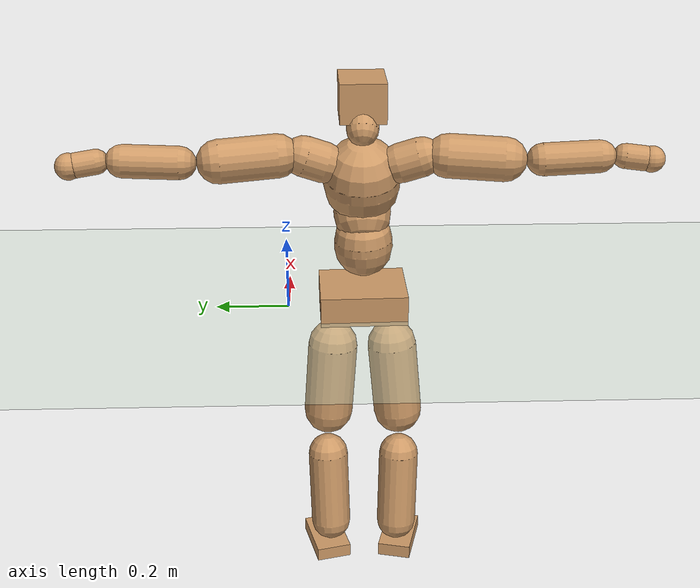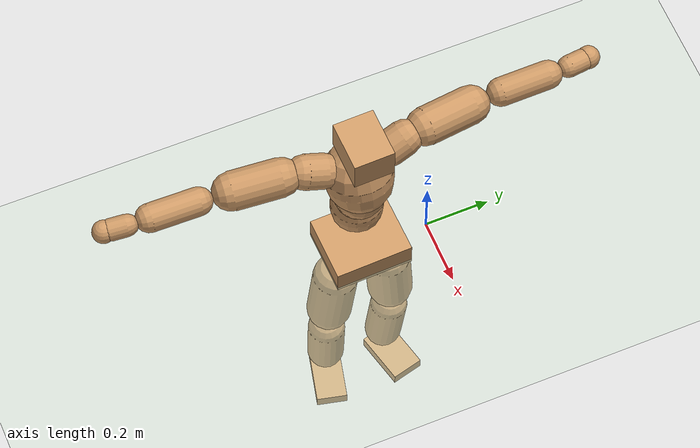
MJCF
<mujoco model="humanoid">
  <compiler coordinate="local" angle="radian"/>
  <default>
    <joint damping="0.0" armature="0.01" stiffness="0.0" limited="true"/>
    <geom conaffinity="1" condim="3" contype="7" margin="0.001" rgba="0.8 0.6 .4 1"/>
  </default>
  <asset>
    <texture type="skybox" builtin="gradient" rgb1=".4 .5 .6" rgb2="0 0 0" width="100" height="100"/>
    <texture builtin="flat" height="1278" mark="cross" markrgb="1 1 1" name="texgeom" random="0.01" rgb1="0.8 0.6 0.4" rgb2="0.8 0.6 0.4" type="cube" width="127"/>
    <texture builtin="checker" height="100" name="texplane" rgb1="0 0 0" rgb2="0.8 0.8 0.8" type="2d" width="100"/>
    <material name="MatPlane" reflectance="0.5" shininess="1" specular="1" texrepeat="60 60" texture="texplane"/>
    <material name="geom" texture="texgeom" texuniform="true"/>
  </asset>
  <worldbody>
    <light cutoff="100" diffuse="1 1 1" dir="-0 0 -1.3" directional="true" exponent="1" pos="0 0 1.3" specular=".1 .1 .1"/>
    <geom conaffinity="1" condim="3" name="floor" pos="0 0 0" rgba="0.8 0.9 0.8 1" size="100 100 .2" type="plane" material="MatPlane"/>
    <body name="Pelvis" pos="-0.0016 -0.2061 0.0404">
      <freejoint name="Pelvis"/>
      <geom type="box" contype="1" conaffinity="1" density="500" pos="-0.0051 -0.0001 -0.0125" size="0.1004 0.1188 0.0414" quat="0.9999 0.0000 0.0000 0.0135" name="Pelvis"/>
      <body name="L_Hip" pos="0.0003 0.079 -0.0897">
        <joint name="L_Hip_x" type="hinge" pos="0 0 0" axis="1 0 0" stiffness="800" damping="80" armature="0.02" range="-180.0000 180.0000"/>
        <joint name="L_Hip_y" type="hinge" pos="0 0 0" axis="0 1 0" stiffness="800" damping="80" armature="0.02" range="-180.0000 180.0000"/>
        <joint name="L_Hip_z" type="hinge" pos="0 0 0" axis="0 0 1" stiffness="800" damping="80" armature="0.02" range="-180.0000 180.0000"/>
        <geom type="capsule" contype="1" conaffinity="1" density="500" fromto="-0.0026 0.0051 -0.0697 -0.0104 0.0203 -0.2788" size="0.0692" name="L_Hip"/>
        <body name="L_Knee" pos="-0.0131 0.0253 -0.3485">
          <joint name="L_Knee_x" type="hinge" pos="0 0 0" axis="1 0 0" stiffness="800" damping="80" armature="0.02" range="-180.0000 180.0000"/>
          <joint name="L_Knee_y" type="hinge" pos="0 0 0" axis="0 1 0" stiffness="800" damping="80" armature="0.02" range="-180.0000 180.0000"/>
          <joint name="L_Knee_z" type="hinge" pos="0 0 0" axis="0 0 1" stiffness="800" damping="80" armature="0.02" range="-180.0000 180.0000"/>
          <geom type="capsule" contype="1" conaffinity="1" density="500" fromto="-0.0094 -0.0019 -0.0734 -0.0375 -0.0077 -0.2938" size="0.0573" name="L_Knee"/>
          <body name="L_Ankle" pos="-0.0469 -0.0096 -0.3672">
            <joint name="L_Ankle_x" type="hinge" pos="0 0 0" axis="1 0 0" stiffness="800" damping="80" armature="0.02" range="-180.0000 180.0000"/>
            <joint name="L_Ankle_y" type="hinge" pos="0 0 0" axis="0 1 0" stiffness="800" damping="80" armature="0.02" range="-180.0000 180.0000"/>
            <joint name="L_Ankle_z" type="hinge" pos="0 0 0" axis="0 0 1" stiffness="800" damping="80" armature="0.02" range="-180.0000 180.0000"/>
            <geom type="box" contype="1" conaffinity="1" density="500" pos="0.0563 0.0141 -0.0268" size="0.0836 0.0504 0.0194" quat="0.9925 0.0000 0.0000 0.1224" name="L_Ankle"/>
            <body name="L_Toe" pos="0.1126 0.0282 -0.0537">
              <joint name="L_Toe_x" type="hinge" pos="0 0 0" axis="1 0 0" stiffness="500" damping="50" armature="0.02" range="-180.0000 180.0000"/>
              <joint name="L_Toe_y" type="hinge" pos="0 0 0" axis="0 1 0" stiffness="500" damping="50" armature="0.02" range="-180.0000 180.0000"/>
              <joint name="L_Toe_z" type="hinge" pos="0 0 0" axis="0 0 1" stiffness="500" damping="50" armature="0.02" range="-180.0000 180.0000"/>
              <geom type="box" contype="1" conaffinity="1" density="500" pos="0.0000 0.0000 0.0267" size="0.001 0.0025 0.001" quat="0.9917 0.0000 0.0000 0.1285" name="L_Toe"/>
            </body>
          </body>
        </body>
      </body>
      <body name="R_Hip" pos="0.0021 -0.0772 -0.0897">
        <joint name="R_Hip_x" type="hinge" pos="0 0 0" axis="1 0 0" stiffness="800" damping="80" armature="0.02" range="-180.0000 180.0000"/>
        <joint name="R_Hip_y" type="hinge" pos="0 0 0" axis="0 1 0" stiffness="800" damping="80" armature="0.02" range="-180.0000 180.0000"/>
        <joint name="R_Hip_z" type="hinge" pos="0 0 0" axis="0 0 1" stiffness="800" damping="80" armature="0.02" range="-180.0000 180.0000"/>
        <geom type="capsule" contype="1" conaffinity="1" density="500" fromto="-0.0031 -0.0062 -0.0705 -0.0123 -0.0248 -0.2819" size="0.0685" name="R_Hip"/>
        <body name="R_Knee" pos="-0.0153 -0.031 -0.3524">
          <joint name="R_Knee_x" type="hinge" pos="0 0 0" axis="1 0 0" stiffness="800" damping="80" armature="0.02" range="-180.0000 180.0000"/>
          <joint name="R_Knee_y" type="hinge" pos="0 0 0" axis="0 1 0" stiffness="800" damping="80" armature="0.02" range="-180.0000 180.0000"/>
          <joint name="R_Knee_z" type="hinge" pos="0 0 0" axis="0 0 1" stiffness="800" damping="80" armature="0.02" range="-180.0000 180.0000"/>
          <geom type="capsule" contype="1" conaffinity="1" density="500" fromto="-0.0093 0.0021 -0.0734 -0.0372 0.0084 -0.2937" size="0.0571" name="R_Knee"/>
          <body name="R_Ankle" pos="-0.0465 0.0105 -0.3672">
            <joint name="R_Ankle_x" type="hinge" pos="0 0 0" axis="1 0 0" stiffness="800" damping="80" armature="0.02" range="-180.0000 180.0000"/>
            <joint name="R_Ankle_y" type="hinge" pos="0 0 0" axis="0 1 0" stiffness="800" damping="80" armature="0.02" range="-180.0000 180.0000"/>
            <joint name="R_Ankle_z" type="hinge" pos="0 0 0" axis="0 0 1" stiffness="800" damping="80" armature="0.02" range="-180.0000 180.0000"/>
            <geom type="box" contype="1" conaffinity="1" density="500" pos="0.0582 -0.0139 -0.0227" size="0.083 0.0477 0.0199" quat="0.9931 0.0000 0.0000 -0.1168" name="R_Ankle"/>
            <body name="R_Toe" pos="0.1163 -0.0278 -0.0454">
              <joint name="R_Toe_x" type="hinge" pos="0 0 0" axis="1 0 0" stiffness="500" damping="50" armature="0.02" range="-180.0000 180.0000"/>
              <joint name="R_Toe_y" type="hinge" pos="0 0 0" axis="0 1 0" stiffness="500" damping="50" armature="0.02" range="-180.0000 180.0000"/>
              <joint name="R_Toe_z" type="hinge" pos="0 0 0" axis="0 0 1" stiffness="500" damping="50" armature="0.02" range="-180.0000 180.0000"/>
              <geom type="box" contype="1" conaffinity="1" density="500" pos="0.0000 0.0000 0.0246" size="0.0009 0.0024 0.0011" quat="0.9943 0.0000 0.0000 -0.1070" name="R_Toe"/>
            </body>
          </body>
        </body>
      </body>
      <body name="Torso" pos="-0.0332 -0.0027 0.1046">
        <joint name="Torso_x" type="hinge" pos="0 0 0" axis="1 0 0" stiffness="1000" damping="100" armature="0.02" range="-180.0000 180.0000"/>
        <joint name="Torso_y" type="hinge" pos="0 0 0" axis="0 1 0" stiffness="1000" damping="100" armature="0.02" range="-180.0000 180.0000"/>
        <joint name="Torso_z" type="hinge" pos="0 0 0" axis="0 0 1" stiffness="1000" damping="100" armature="0.02" range="-180.0000 180.0000"/>
        <geom type="capsule" contype="1" conaffinity="1" density="500" fromto="-0.0048 0.0020 0.0706 -0.0032 0.0014 0.0470" size="0.0783" name="Torso"/>
        <body name="Spine" pos="-0.0079 0.0034 0.1176">
          <joint name="Spine_x" type="hinge" pos="0 0 0" axis="1 0 0" stiffness="1000" damping="100" armature="0.02" range="-180.0000 180.0000"/>
          <joint name="Spine_y" type="hinge" pos="0 0 0" axis="0 1 0" stiffness="1000" damping="100" armature="0.02" range="-180.0000 180.0000"/>
          <joint name="Spine_z" type="hinge" pos="0 0 0" axis="0 0 1" stiffness="1000" damping="100" armature="0.02" range="-180.0000 180.0000"/>
          <geom type="capsule" contype="1" conaffinity="1" density="500" fromto="0.0195 0.0014 0.0281 0.0130 0.0009 0.0187" size="0.077" name="Spine"/>
          <body name="Chest" pos="0.0326 0.0023 0.0468">
            <joint name="Chest_x" type="hinge" pos="0 0 0" axis="1 0 0" stiffness="1000" damping="100" armature="0.02" range="-180.0000 180.0000"/>
            <joint name="Chest_y" type="hinge" pos="0 0 0" axis="0 1 0" stiffness="1000" damping="100" armature="0.02" range="-180.0000 180.0000"/>
            <joint name="Chest_z" type="hinge" pos="0 0 0" axis="0 0 1" stiffness="1000" damping="100" armature="0.02" range="-180.0000 180.0000"/>
            <geom type="capsule" contype="1" conaffinity="1" density="500" fromto="-0.0261 -0.0004 0.0872 -0.0174 -0.0003 0.0581" size="0.1013" name="Chest"/>
            <body name="Neck" pos="-0.0517 -0.0014 0.2013">
              <joint name="Neck_x" type="hinge" pos="0 0 0" axis="1 0 0" stiffness="500" damping="50" armature="0.02" range="-180.0000 180.0000"/>
              <joint name="Neck_y" type="hinge" pos="0 0 0" axis="0 1 0" stiffness="500" damping="50" armature="0.02" range="-180.0000 180.0000"/>
              <joint name="Neck_z" type="hinge" pos="0 0 0" axis="0 0 1" stiffness="500" damping="50" armature="0.02" range="-180.0000 180.0000"/>
              <geom type="capsule" contype="1" conaffinity="1" density="500" fromto="0.0090 -0.0002 0.0106 0.0360 -0.0009 0.0424" size="0.0423" name="Neck"/>
              <body name="Head" pos="0.0451 -0.0011 0.053">
                <joint name="Head_x" type="hinge" pos="0 0 0" axis="1 0 0" stiffness="500" damping="50" armature="0.02" range="-180.0000 180.0000"/>
                <joint name="Head_y" type="hinge" pos="0 0 0" axis="0 1 0" stiffness="500" damping="50" armature="0.02" range="-180.0000 180.0000"/>
                <joint name="Head_z" type="hinge" pos="0 0 0" axis="0 0 1" stiffness="500" damping="50" armature="0.02" range="-180.0000 180.0000"/>
                <geom type="box" contype="1" conaffinity="1" density="500" pos="0.0235 0.0005 0.0275" size="0.0758 0.061 0.0524" quat="1.0000 0.0000 0.0000 0.0098" name="Head"/>
              </body>
            </body>
            <body name="L_Thorax" pos="-0.037 0.0794 0.118">
              <joint name="L_Thorax_x" type="hinge" pos="0 0 0" axis="1 0 0" stiffness="500" damping="50" armature="0.02" range="-180.0000 180.0000"/>
              <joint name="L_Thorax_y" type="hinge" pos="0 0 0" axis="0 1 0" stiffness="500" damping="50" armature="0.02" range="-180.0000 180.0000"/>
              <joint name="L_Thorax_z" type="hinge" pos="0 0 0" axis="0 0 1" stiffness="500" damping="50" armature="0.02" range="-180.0000 180.0000"/>
              <geom type="capsule" contype="1" conaffinity="1" density="500" fromto="-0.0023 0.0179 0.0067 -0.0092 0.0715 0.0270" size="0.0534" name="L_Thorax"/>
              <body name="L_Shoulder" pos="-0.0115 0.0893 0.0337">
                <joint name="L_Shoulder_x" type="hinge" pos="0 0 0" axis="1 0 0" stiffness="500" damping="50" armature="0.02" range="-720.0000 720.0000"/>
                <joint name="L_Shoulder_y" type="hinge" pos="0 0 0" axis="0 1 0" stiffness="500" damping="50" armature="0.02" range="-720.0000 720.0000"/>
                <joint name="L_Shoulder_z" type="hinge" pos="0 0 0" axis="0 0 1" stiffness="500" damping="50" armature="0.02" range="-720.0000 720.0000"/>
                <geom type="capsule" contype="1" conaffinity="1" density="500" fromto="-0.0067 0.0496 -0.0024 -0.0268 0.1983 -0.0095" size="0.0575" name="L_Shoulder"/>
                <body name="L_Elbow" pos="-0.0334 0.2479 -0.0119">
                  <joint name="L_Elbow_x" type="hinge" pos="0 0 0" axis="1 0 0" stiffness="500" damping="50" armature="0.02" range="-720.0000 720.0000"/>
                  <joint name="L_Elbow_y" type="hinge" pos="0 0 0" axis="0 1 0" stiffness="500" damping="50" armature="0.02" range="-720.0000 720.0000"/>
                  <joint name="L_Elbow_z" type="hinge" pos="0 0 0" axis="0 0 1" stiffness="500" damping="50" armature="0.02" range="-720.0000 720.0000"/>
                  <geom type="capsule" contype="1" conaffinity="1" density="500" fromto="0.0005 0.0485 0.0020 0.0022 0.1942 0.0078" size="0.043" name="L_Elbow"/>
                  <body name="L_Wrist" pos="0.0027 0.2427 0.0098">
                    <joint name="L_Wrist_x" type="hinge" pos="0 0 0" axis="1 0 0" stiffness="300" damping="30" armature="0.02" range="-180.0000 180.0000"/>
                    <joint name="L_Wrist_y" type="hinge" pos="0 0 0" axis="0 1 0" stiffness="300" damping="30" armature="0.02" range="-180.0000 180.0000"/>
                    <joint name="L_Wrist_z" type="hinge" pos="0 0 0" axis="0 0 1" stiffness="300" damping="30" armature="0.02" range="-180.0000 180.0000"/>
                    <geom type="capsule" contype="1" conaffinity="1" density="500" fromto="-0.0028 0.0171 -0.0021 -0.0112 0.0685 -0.0083" size="0.0326" name="L_Wrist"/>
                    <body name="L_Hand" pos="-0.014 0.0857 -0.0104">
                      <joint name="L_Hand_x" type="hinge" pos="0 0 0" axis="1 0 0" stiffness="300" damping="30" armature="0.02" range="-180.0000 180.0000"/>
                      <joint name="L_Hand_y" type="hinge" pos="0 0 0" axis="0 1 0" stiffness="300" damping="30" armature="0.02" range="-180.0000 180.0000"/>
                      <joint name="L_Hand_z" type="hinge" pos="0 0 0" axis="0 0 1" stiffness="300" damping="30" armature="0.02" range="-180.0000 180.0000"/>
                      <geom type="sphere" contype="1" conaffinity="1" density="500" size="0.0346" pos="0.0000 0.0000 0.0000" name="L_Hand"/>
                    </body>
                  </body>
                </body>
              </body>
            </body>
            <body name="R_Thorax" pos="-0.0417 -0.0801 0.1164">
              <joint name="R_Thorax_x" type="hinge" pos="0 0 0" axis="1 0 0" stiffness="500" damping="50" armature="0.02" range="-180.0000 180.0000"/>
              <joint name="R_Thorax_y" type="hinge" pos="0 0 0" axis="0 1 0" stiffness="500" damping="50" armature="0.02" range="-180.0000 180.0000"/>
              <joint name="R_Thorax_z" type="hinge" pos="0 0 0" axis="0 0 1" stiffness="500" damping="50" armature="0.02" range="-180.0000 180.0000"/>
              <geom type="capsule" contype="1" conaffinity="1" density="500" fromto="-0.0024 -0.0186 0.0063 -0.0097 -0.0744 0.0253" size="0.0522" name="R_Thorax"/>
              <body name="R_Shoulder" pos="-0.0122 -0.093 0.0317">
                <joint name="R_Shoulder_x" type="hinge" pos="0 0 0" axis="1 0 0" stiffness="500" damping="50" armature="0.02" range="-720.0000 720.0000"/>
                <joint name="R_Shoulder_y" type="hinge" pos="0 0 0" axis="0 1 0" stiffness="500" damping="50" armature="0.02" range="-720.0000 720.0000"/>
                <joint name="R_Shoulder_z" type="hinge" pos="0 0 0" axis="0 0 1" stiffness="500" damping="50" armature="0.02" range="-720.0000 720.0000"/>
                <geom type="capsule" contype="1" conaffinity="1" density="500" fromto="-0.0050 -0.0485 -0.0020 -0.0201 -0.1938 -0.0080" size="0.0579" name="R_Shoulder"/>
                <body name="R_Elbow" pos="-0.0251 -0.2423 -0.01">
                  <joint name="R_Elbow_x" type="hinge" pos="0 0 0" axis="1 0 0" stiffness="500" damping="50" armature="0.02" range="-720.0000 720.0000"/>
                  <joint name="R_Elbow_y" type="hinge" pos="0 0 0" axis="0 1 0" stiffness="500" damping="50" armature="0.02" range="-720.0000 720.0000"/>
                  <joint name="R_Elbow_z" type="hinge" pos="0 0 0" axis="0 0 1" stiffness="500" damping="50" armature="0.02" range="-720.0000 720.0000"/>
                  <geom type="capsule" contype="1" conaffinity="1" density="500" fromto="0.0003 -0.0488 0.0022 0.0012 -0.1952 0.0089" size="0.0426" name="R_Elbow"/>
                  <body name="R_Wrist" pos="0.0015 -0.244 0.0112">
                    <joint name="R_Wrist_x" type="hinge" pos="0 0 0" axis="1 0 0" stiffness="300" damping="30" armature="0.02" range="-180.0000 180.0000"/>
                    <joint name="R_Wrist_y" type="hinge" pos="0 0 0" axis="0 1 0" stiffness="300" damping="30" armature="0.02" range="-180.0000 180.0000"/>
                    <joint name="R_Wrist_z" type="hinge" pos="0 0 0" axis="0 0 1" stiffness="300" damping="30" armature="0.02" range="-180.0000 180.0000"/>
                    <geom type="capsule" contype="1" conaffinity="1" density="500" fromto="-0.0022 -0.0169 -0.0015 -0.0089 -0.0675 -0.0061" size="0.0327" name="R_Wrist"/>
                    <body name="R_Hand" pos="-0.0112 -0.0844 -0.0076">
                      <joint name="R_Hand_x" type="hinge" pos="0 0 0" axis="1 0 0" stiffness="300" damping="30" armature="0.02" range="-180.0000 180.0000"/>
                      <joint name="R_Hand_y" type="hinge" pos="0 0 0" axis="0 1 0" stiffness="300" damping="30" armature="0.02" range="-180.0000 180.0000"/>
                      <joint name="R_Hand_z" type="hinge" pos="0 0 0" axis="0 0 1" stiffness="300" damping="30" armature="0.02" range="-180.0000 180.0000"/>
                      <geom type="sphere" contype="1" conaffinity="1" density="500" size="0.0341" pos="0.0000 0.0000 0.0000" name="R_Hand"/>
                    </body>
                  </body>
                </body>
              </body>
            </body>
          </body>
        </body>
      </body>
    </body>
  </worldbody>
  <actuator>
    <motor name="L_Hip_x" joint="L_Hip_x" gear="500"/>
    <motor name="L_Hip_y" joint="L_Hip_y" gear="500"/>
    <motor name="L_Hip_z" joint="L_Hip_z" gear="500"/>
    <motor name="L_Knee_x" joint="L_Knee_x" gear="500"/>
    <motor name="L_Knee_y" joint="L_Knee_y" gear="500"/>
    <motor name="L_Knee_z" joint="L_Knee_z" gear="500"/>
    <motor name="L_Ankle_x" joint="L_Ankle_x" gear="500"/>
    <motor name="L_Ankle_y" joint="L_Ankle_y" gear="500"/>
    <motor name="L_Ankle_z" joint="L_Ankle_z" gear="500"/>
    <motor name="L_Toe_x" joint="L_Toe_x" gear="500"/>
    <motor name="L_Toe_y" joint="L_Toe_y" gear="500"/>
    <motor name="L_Toe_z" joint="L_Toe_z" gear="500"/>
    <motor name="R_Hip_x" joint="R_Hip_x" gear="500"/>
    <motor name="R_Hip_y" joint="R_Hip_y" gear="500"/>
    <motor name="R_Hip_z" joint="R_Hip_z" gear="500"/>
    <motor name="R_Knee_x" joint="R_Knee_x" gear="500"/>
    <motor name="R_Knee_y" joint="R_Knee_y" gear="500"/>
    <motor name="R_Knee_z" joint="R_Knee_z" gear="500"/>
    <motor name="R_Ankle_x" joint="R_Ankle_x" gear="500"/>
    <motor name="R_Ankle_y" joint="R_Ankle_y" gear="500"/>
    <motor name="R_Ankle_z" joint="R_Ankle_z" gear="500"/>
    <motor name="R_Toe_x" joint="R_Toe_x" gear="500"/>
    <motor name="R_Toe_y" joint="R_Toe_y" gear="500"/>
    <motor name="R_Toe_z" joint="R_Toe_z" gear="500"/>
    <motor name="Torso_x" joint="Torso_x" gear="500"/>
    <motor name="Torso_y" joint="Torso_y" gear="500"/>
    <motor name="Torso_z" joint="Torso_z" gear="500"/>
    <motor name="Spine_x" joint="Spine_x" gear="500"/>
    <motor name="Spine_y" joint="Spine_y" gear="500"/>
    <motor name="Spine_z" joint="Spine_z" gear="500"/>
    <motor name="Chest_x" joint="Chest_x" gear="500"/>
    <motor name="Chest_y" joint="Chest_y" gear="500"/>
    <motor name="Chest_z" joint="Chest_z" gear="500"/>
    <motor name="Neck_x" joint="Neck_x" gear="500"/>
    <motor name="Neck_y" joint="Neck_y" gear="500"/>
    <motor name="Neck_z" joint="Neck_z" gear="500"/>
    <motor name="Head_x" joint="Head_x" gear="500"/>
    <motor name="Head_y" joint="Head_y" gear="500"/>
    <motor name="Head_z" joint="Head_z" gear="500"/>
    <motor name="L_Thorax_x" joint="L_Thorax_x" gear="500"/>
    <motor name="L_Thorax_y" joint="L_Thorax_y" gear="500"/>
    <motor name="L_Thorax_z" joint="L_Thorax_z" gear="500"/>
    <motor name="L_Shoulder_x" joint="L_Shoulder_x" gear="500"/>
    <motor name="L_Shoulder_y" joint="L_Shoulder_y" gear="500"/>
    <motor name="L_Shoulder_z" joint="L_Shoulder_z" gear="500"/>
    <motor name="L_Elbow_x" joint="L_Elbow_x" gear="500"/>
    <motor name="L_Elbow_y" joint="L_Elbow_y" gear="500"/>
    <motor name="L_Elbow_z" joint="L_Elbow_z" gear="500"/>
    <motor name="L_Wrist_x" joint="L_Wrist_x" gear="500"/>
    <motor name="L_Wrist_y" joint="L_Wrist_y" gear="500"/>
    <motor name="L_Wrist_z" joint="L_Wrist_z" gear="500"/>
    <motor name="L_Hand_x" joint="L_Hand_x" gear="500"/>
    <motor name="L_Hand_y" joint="L_Hand_y" gear="500"/>
    <motor name="L_Hand_z" joint="L_Hand_z" gear="500"/>
    <motor name="R_Thorax_x" joint="R_Thorax_x" gear="500"/>
    <motor name="R_Thorax_y" joint="R_Thorax_y" gear="500"/>
    <motor name="R_Thorax_z" joint="R_Thorax_z" gear="500"/>
    <motor name="R_Shoulder_x" joint="R_Shoulder_x" gear="500"/>
    <motor name="R_Shoulder_y" joint="R_Shoulder_y" gear="500"/>
    <motor name="R_Shoulder_z" joint="R_Shoulder_z" gear="500"/>
    <motor name="R_Elbow_x" joint="R_Elbow_x" gear="500"/>
    <motor name="R_Elbow_y" joint="R_Elbow_y" gear="500"/>
    <motor name="R_Elbow_z" joint="R_Elbow_z" gear="500"/>
    <motor name="R_Wrist_x" joint="R_Wrist_x" gear="500"/>
    <motor name="R_Wrist_y" joint="R_Wrist_y" gear="500"/>
    <motor name="R_Wrist_z" joint="R_Wrist_z" gear="500"/>
    <motor name="R_Hand_x" joint="R_Hand_x" gear="500"/>
    <motor name="R_Hand_y" joint="R_Hand_y" gear="500"/>
    <motor name="R_Hand_z" joint="R_Hand_z" gear="500"/>
  </actuator>
  <contact>
    <exclude body1="Torso" body2="Chest"/>
    <exclude body1="Head" body2="Chest"/>
    <exclude body1="R_Knee" body2="R_Toe"/>
    <exclude body1="R_Knee" body2="L_Ankle"/>
    <exclude body1="R_Knee" body2="L_Toe"/>
    <exclude body1="L_Knee" body2="L_Toe"/>
    <exclude body1="L_Knee" body2="R_Ankle"/>
    <exclude body1="L_Knee" body2="R_Toe"/>
    <exclude body1="L_Shoulder" body2="Chest"/>
    <exclude body1="R_Shoulder" body2="Chest"/>
  </contact>
  <sensor/>
  <size njmax="700" nconmax="700"/>
</mujoco>
